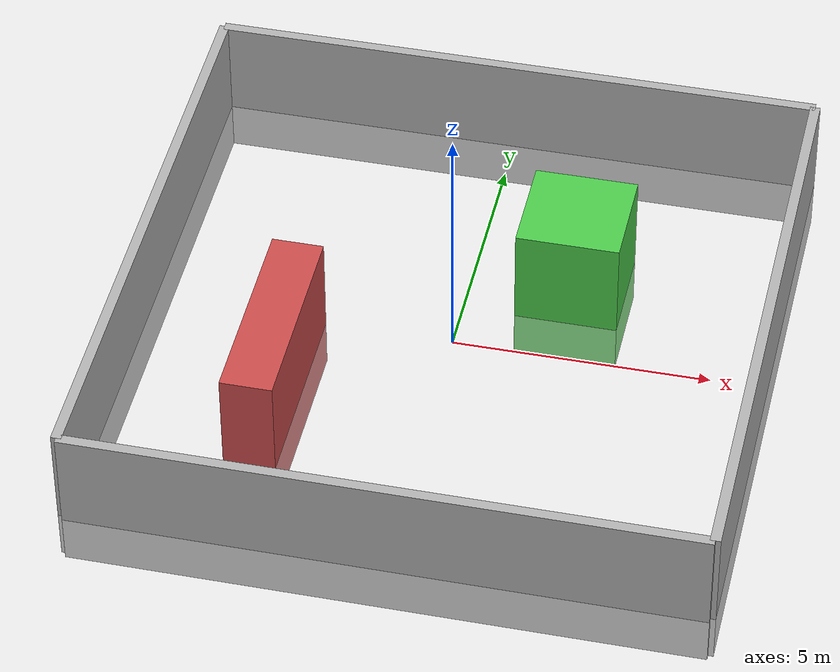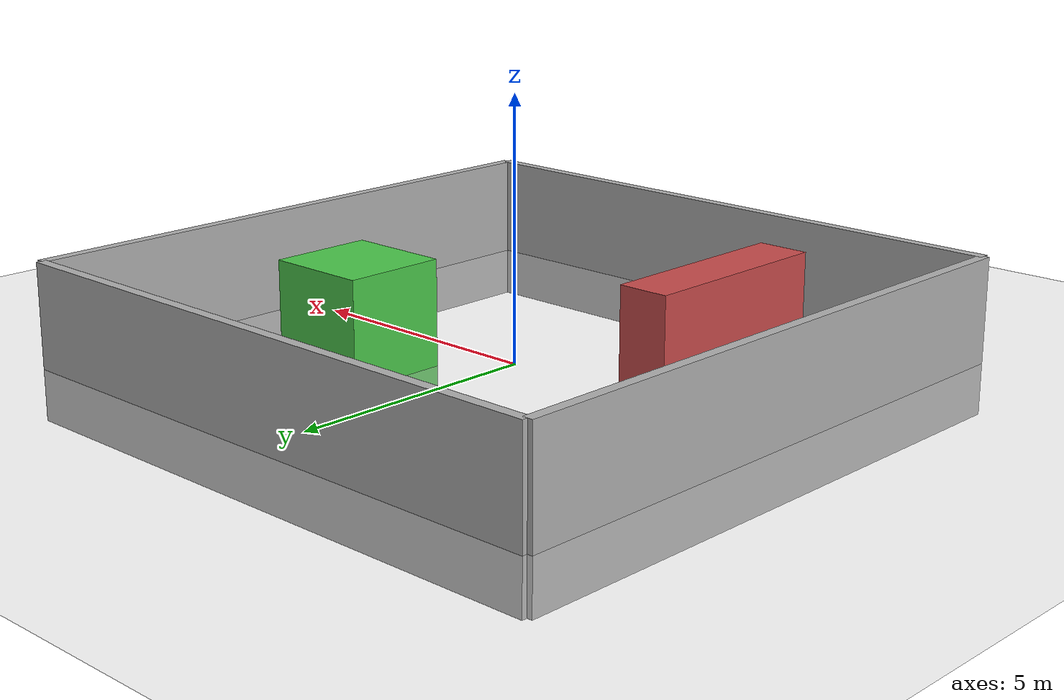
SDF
<?xml version="1.0" ?>
<sdf version="1.8">
  <!-- THE WORLD NAME MUST BE 'empty' for the drone wrench topic to work! -->
  <world name="empty">

    <gravity>0 0 -9.8</gravity>
    <physics default="0" name="default_physics" type="ode">
      <max_step_size>0.001</max_step_size>
      <real_time_factor>1.0</real_time_factor>
    </physics>

    <!-- Essential Gazebo Sim Systems -->
    <plugin filename="gz-sim-physics-system" name="gz::sim::systems::Physics"/>
    <plugin filename="gz-sim-user-commands-system" name="gz::sim::systems::UserCommands"/>
    <plugin filename="gz-sim-scene-broadcaster-system" name="gz::sim::systems::SceneBroadcaster"/>

    <!-- Sensor and IMU plugins -->
    <plugin filename="gz-sim-sensors-system" name="gz::sim::systems::Sensors">
      <render_engine>ogre2</render_engine>
    </plugin>
    <plugin filename="gz-sim-imu-system" name="gz::sim::systems::Imu"/>

    <!-- Critical for Drone Flight: ApplyLinkWrench -->
    <plugin filename="gz-sim-apply-link-wrench-system" name="gz::sim::systems::ApplyLinkWrench"/>

    <light name="sun" type="directional">
      <cast_shadows>true</cast_shadows>
      <pose>0 0 10 0 0 0</pose>
      <diffuse>0.8 0.8 0.8 1</diffuse>
      <specular>0.2 0.2 0.2 1</specular>
      <direction>-0.5 0.1 -0.9</direction>
    </light>

    <model name="ground_plane">
      <static>true</static>
      <link name="link">
        <collision name="collision">
          <geometry><plane><normal>0 0 1</normal><size>100 100</size></plane></geometry>
        </collision>
        <visual name="visual">
          <geometry><plane><normal>0 0 1</normal><size>100 100</size></plane></geometry>
          <material>
            <ambient>0.8 0.8 0.8 1</ambient>
            <diffuse>0.8 0.8 0.8 1</diffuse>
            <specular>0.8 0.8 0.8 1</specular>
          </material>
        </visual>
      </link>
    </model>

    <!-- Drone Exploration House 12x12m -->
    <model name="drone_house">
      <static>true</static>
      <pose>0 0 0.5 0 0 0</pose>

      <!-- Walls -->
      <link name="wall_north">
        <pose>0 6 0 0 0 0</pose>
        <collision name="collision"><geometry><box><size>12 0.2 3</size></box></geometry></collision>
        <visual name="visual"><geometry><box><size>12 0.2 3</size></box></geometry><material><ambient>0.7 0.7 0.7 1</ambient></material></visual>
      </link>
      <link name="wall_south">
        <pose>0 -6 0 0 0 0</pose>
        <collision name="collision"><geometry><box><size>12 0.2 3</size></box></geometry></collision>
        <visual name="visual"><geometry><box><size>12 0.2 3</size></box></geometry><material><ambient>0.7 0.7 0.7 1</ambient></material></visual>
      </link>
      <link name="wall_east">
        <pose>6 0 0 0 0 0</pose>
        <collision name="collision"><geometry><box><size>0.2 12 3</size></box></geometry></collision>
        <visual name="visual"><geometry><box><size>0.2 12 3</size></box></geometry><material><ambient>0.7 0.7 0.7 1</ambient></material></visual>
      </link>
      <link name="wall_west">
        <pose>-6 0 0 0 0 0</pose>
        <collision name="collision"><geometry><box><size>0.2 12 3</size></box></geometry></collision>
        <visual name="visual"><geometry><box><size>0.2 12 3</size></box></geometry><material><ambient>0.7 0.7 0.7 1</ambient></material></visual>
      </link>

      <!-- Inner obstacles -->
      <link name="obstacle_1">
        <pose>2 2 0 0 0 0</pose>
        <collision name="collision"><geometry><box><size>2 2 3</size></box></geometry></collision>
        <visual name="visual"><geometry><box><size>2 2 3</size></box></geometry><material><ambient>0.3 0.8 0.3 1</ambient></material></visual>
      </link>
      <link name="obstacle_2">
        <pose>-3 -2 0 0 0 0</pose>
        <collision name="collision"><geometry><box><size>1 4 3</size></box></geometry></collision>
        <visual name="visual"><geometry><box><size>1 4 3</size></box></geometry><material><ambient>0.8 0.3 0.3 1</ambient></material></visual>
      </link>
    </model>

  </world>
</sdf>
